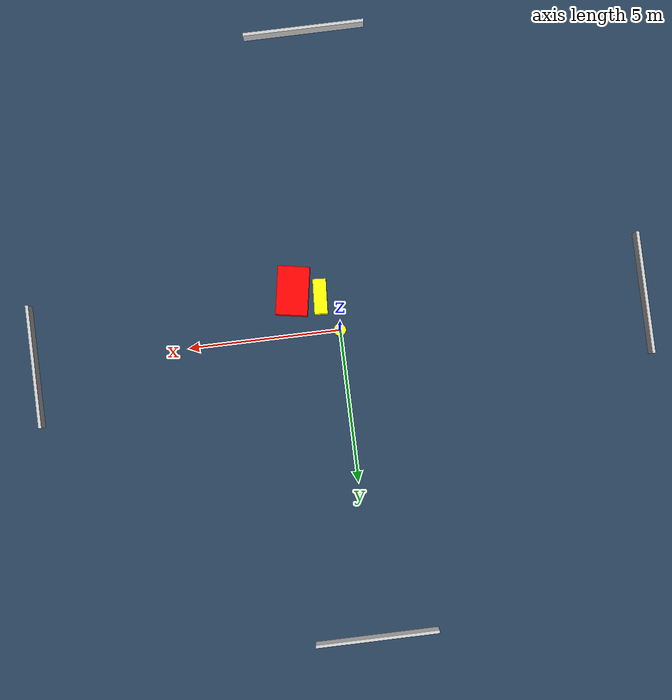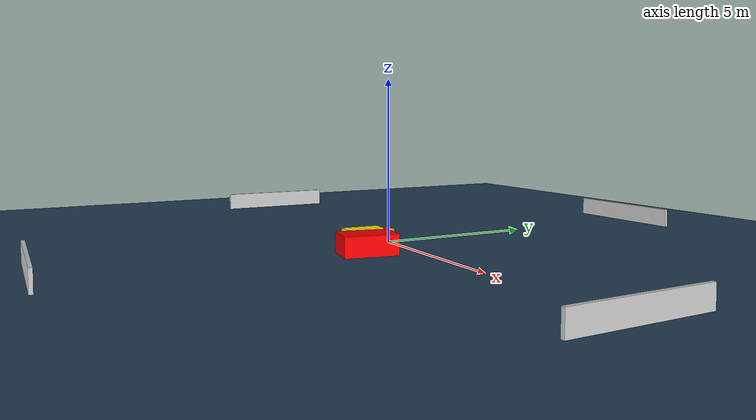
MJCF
<?xml version="1.0" ?>
<mujoco model="generated_environment">
  <option timestep="0.01" integrator="RK4" cone="elliptic"/>
  <default>
    <geom density="1"/>
  </default>
  <asset>
    <texture builtin="gradient" height="3072" name="skybox" rgb1="0.3 0.5 0.7" rgb2="0 0 0" type="skybox" width="512"/>
    <texture builtin="checker" height="300" name="groundplane" rgb1="0.2 0.3 0.4" rgb2="0.1 0.2 0.3" type="2d" width="300"/>
    <material name="groundplane" reflectance="0.2" texrepeat="5 5" texture="groundplane"/>
  </asset>
  <worldbody>
    <light dir="0 0 -1" directional="true" pos="0 0 1.5"/>
    <geom condim="3" friction="0.5 0.005 0.001" material="groundplane" name="floor" pos="0 0 0" size="0 0 0.05" type="plane"/>
    <body name="walls">
      <geom name="wall_1" condim="4" pos="-10.0 0.0 0.3" rgba="0.800000011920929 0.800000011920929 0.800000011920929 1.0" size="0.05 2.0 0.3" type="box"/>
      <geom name="wall_2" condim="4" pos="10.0 0.0 0.3" rgba="0.800000011920929 0.800000011920929 0.800000011920929 1.0" size="0.05 2.0 0.3" type="box"/>
      <geom name="wall_3" condim="4" pos="0.0 -10.0 0.3" rgba="0.800000011920929 0.800000011920929 0.800000011920929 1.0" size="2.0 0.05 0.3" type="box"/>
      <geom name="wall_4" condim="4" pos="0.0 10.0 0.3" rgba="0.800000011920929 0.800000011920929 0.800000011920929 1.0" size="2.0 0.05 0.3" type="box"/>
    </body>
    <body name="robot">
      <joint name="joint_x" type="slide" pos="0 0 0" axis="1 0 0"/>
      <joint name="joint_y" type="slide" pos="0 0 0" axis="0 1 0"/>
      <geom name="robot" type="cylinder" pos="0.0 0.0 0.2" size="0.2 0.2 0.0" mass="5.0" friction="1.0 0.005 0.0001" condim="4" rgba="1.0 1.0 0.0 1.0"/>
    </body>
    <body name="obstacle_1_movable">
      <geom name="obstacle_1_movable" condim="4" pos="0.5091892416440958 -1.1480743286033153 0.3" euler="0 0 266.4805317995098" friction="0.0 0.005 0.001" rgba="1.0 1.0 0.0 1.0" size="0.5705442207839586 0.21493485803800896 0.3" type="box" mass="0.1"/>
      <joint type="free"/>
    </body>
    <body name="obstacle_2_static">
      <geom name="obstacle_2_static" condim="4" pos="1.3752107057744296 -1.4360102340555914 0.3" euler="0 0 170.24522841130172" friction="0.0 0.005 0.001" rgba="1.0 0.0 0.0 1.0" size="0.5200818014146544 0.793542985341446 0.3" type="box"/>
    </body>
  </worldbody>
  <actuator>
    <motor name="actuator_x" joint="joint_x" gear="1" ctrlrange="-1 1"/>
    <motor name="actuator_y" joint="joint_y" gear="1" ctrlrange="-1 1"/>
  </actuator>
</mujoco>
